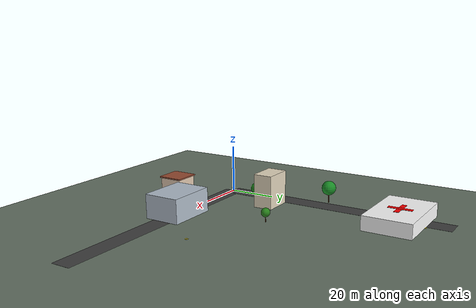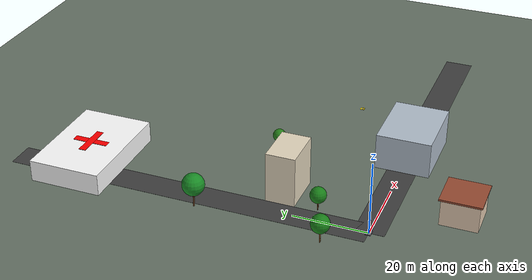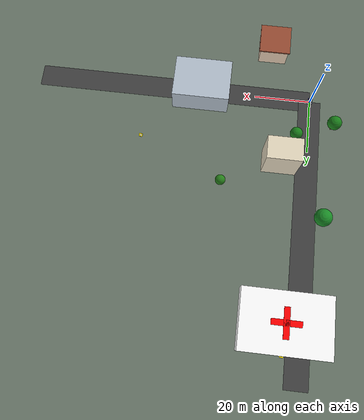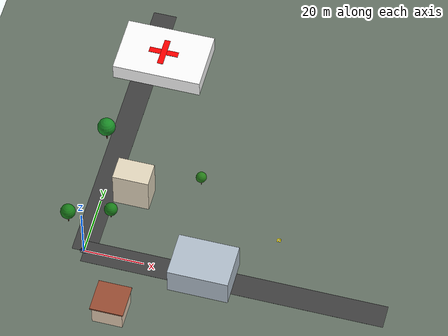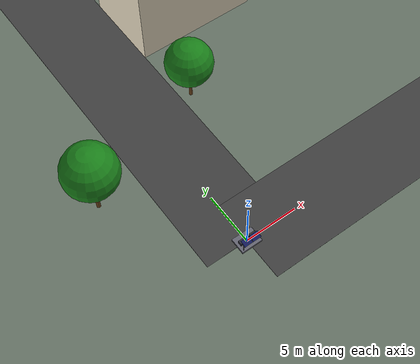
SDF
<?xml version="1.0" ?>
<sdf version="1.6">
  <world name="delivery_urban">

    <!-- Physics settings — reduce for faster simulation if needed -->
    <physics type="ode">
      <real_time_update_rate>1000</real_time_update_rate>
      <max_step_size>0.001</max_step_size>
      <real_time_factor>1</real_time_factor>
      <ode>
        <solver>
          <type>quick</type>
          <iters>150</iters>
          <sor>1.400000</sor>
        </solver>
        <constraints>
          <cfm>0.00001</cfm>
          <erp>0.2</erp>
          <contact_max_correcting_vel>2000</contact_max_correcting_vel>
          <contact_surface_layer>0.01000</contact_surface_layer>
        </constraints>
      </ode>
    </physics>

    <!-- Lighting -->
    <light name="sun" type="directional">
      <cast_shadows>true</cast_shadows>
      <pose>0 0 1000 0 -0 0</pose>
      <diffuse>0.8 0.8 0.8 1</diffuse>
      <specular>0.1 0.1 0.1 1</specular>
      <direction>-0.5 0.1 -0.9</direction>
    </light>

    <!-- Atmosphere for barometer simulation -->
    <atmosphere type="adiabatic"/>

    <!-- Scene -->
    <scene>
      <ambient>0.4 0.4 0.4 1</ambient>
      <background>0.7 0.8 0.95 1</background>
      <sky>
        <clouds>
          <speed>12</speed>
        </clouds>
      </sky>
    </scene>

    <!-- Gravity -->
    <gravity>0 0 -9.8066</gravity>
    <magnetic_field>6e-06 2.3e-05 -4.2e-05</magnetic_field>

    <!-- ================================================================
         GROUND PLANE
    ================================================================ -->
    <model name="ground_plane">
      <static>true</static>
      <link name="link">
        <collision name="collision">
          <geometry><plane><normal>0 0 1</normal><size>500 500</size></plane></geometry>
        </collision>
        <visual name="visual">
          <cast_shadows>false</cast_shadows>
          <geometry><plane><normal>0 0 1</normal><size>500 500</size></plane></geometry>
          <material>
            <ambient>0.3 0.35 0.3 1</ambient>
            <diffuse>0.4 0.45 0.4 1</diffuse>
          </material>
        </visual>
      </link>
    </model>

    <!-- ================================================================
         ROAD (simplified flat darker strip)
    ================================================================ -->
    <model name="road_north">
      <static>true</static>
      <pose>0 50 0.005 0 0 0</pose>
      <link name="link">
        <visual name="visual">
          <geometry><box><size>8 100 0.01</size></box></geometry>
          <material><ambient>0.2 0.2 0.2 1</ambient><diffuse>0.25 0.25 0.25 1</diffuse></material>
        </visual>
      </link>
    </model>

    <model name="road_east">
      <static>true</static>
      <pose>50 0 0.005 0 0 0</pose>
      <link name="link">
        <visual name="visual">
          <geometry><box><size>100 8 0.01</size></box></geometry>
          <material><ambient>0.2 0.2 0.2 1</ambient><diffuse>0.25 0.25 0.25 1</diffuse></material>
        </visual>
      </link>
    </model>

    <model name="building_a">
      <static>true</static>
      <pose>10 25 7 0 0 0</pose>
      <link name="link">
        <collision name="collision">
          <geometry><box><size>12 8 14</size></box></geometry>
        </collision>
        <visual name="visual">
          <geometry><box><size>12 8 14</size></box></geometry>
          <material>
            <ambient>0.8 0.75 0.65 1</ambient>
            <diffuse>0.9 0.85 0.75 1</diffuse>
          </material>
        </visual>
      </link>
    </model>

    <model name="building_b">
      <static>true</static>
      <pose>40 0 5 0 0 0</pose>
      <link name="link">
        <collision name="collision">
          <geometry><box><size>20 15 10</size></box></geometry>
        </collision>
        <visual name="visual">
          <geometry><box><size>20 15 10</size></box></geometry>
          <material>
            <ambient>0.6 0.65 0.7 1</ambient>
            <diffuse>0.7 0.75 0.8 1</diffuse>
          </material>
        </visual>
      </link>
    </model>

    <model name="building_c">
      <static>true</static>
      <pose>15 -20 3.5 0 0 0</pose>
      <link name="link">
        <collision name="collision">
          <geometry><box><size>10 10 7</size></box></geometry>
        </collision>
        <visual name="visual">
          <geometry><box><size>10 10 7</size></box></geometry>
          <material>
            <ambient>0.85 0.7 0.6 1</ambient>
            <diffuse>0.9 0.8 0.7 1</diffuse>
          </material>
        </visual>
        <!-- Roof -->
        <visual name="roof">
          <pose>0 0 4 0 0 0</pose>
          <geometry><box><size>11 11 0.5</size></box></geometry>
          <material><ambient>0.6 0.3 0.2 1</ambient></material>
        </visual>
      </link>
    </model>

    <model name="building_hospital">
      <static>true</static>
      <pose>5 80 3 0 0 0</pose>
      <link name="link">
        <collision name="collision">
          <geometry><box><size>30 20 6</size></box></geometry>
        </collision>
        <visual name="visual">
          <geometry><box><size>30 20 6</size></box></geometry>
          <material>
            <ambient>0.95 0.95 0.95 1</ambient>
            <diffuse>1 1 1 1</diffuse>
          </material>
        </visual>
        <!-- Red cross marker on roof -->
        <visual name="cross_h">
          <pose>0 0 3.05 0 0 0</pose>
          <geometry><box><size>10 2 0.1</size></box></geometry>
          <material><ambient>0.9 0 0 1</ambient><diffuse>1 0 0 1</diffuse></material>
        </visual>
        <visual name="cross_v">
          <pose>0 0 3.05 0 0 0</pose>
          <geometry><box><size>2 10 0.1</size></box></geometry>
          <material><ambient>0.9 0 0 1</ambient><diffuse>1 0 0 1</diffuse></material>
        </visual>
      </link>
    </model>

    <!-- ================================================================
         TREES (cylindrical trunks + spherical canopies)
    ================================================================ -->
    <model name="tree_1">
      <static>true</static>
      <pose>5 15 0 0 0 0</pose>
      <link name="link">
        <visual name="trunk">
          <pose>0 0 1.5 0 0 0</pose>
          <geometry><cylinder><radius>0.15</radius><length>3</length></cylinder></geometry>
          <material><ambient>0.4 0.25 0.1 1</ambient></material>
        </visual>
        <visual name="canopy">
          <pose>0 0 4.5 0 0 0</pose>
          <geometry><sphere><radius>2.2</radius></sphere></geometry>
          <material><ambient>0.1 0.45 0.1 1</ambient><diffuse>0.1 0.5 0.1 1</diffuse></material>
        </visual>
        <collision name="trunk_collision">
          <pose>0 0 1.5 0 0 0</pose>
          <geometry><cylinder><radius>0.15</radius><length>3</length></cylinder></geometry>
        </collision>
        <collision name="canopy_collision">
          <pose>0 0 4.5 0 0 0</pose>
          <geometry><sphere><radius>2.2</radius></sphere></geometry>
        </collision>
      </link>
    </model>

    <model name="tree_2">
      <static>true</static>
      <pose>-8 10 0 0 0 0</pose>
      <link name="link">
        <visual name="trunk">
          <pose>0 0 2 0 0 0</pose>
          <geometry><cylinder><radius>0.18</radius><length>4</length></cylinder></geometry>
          <material><ambient>0.4 0.25 0.1 1</ambient></material>
        </visual>
        <visual name="canopy">
          <pose>0 0 5.5 0 0 0</pose>
          <geometry><sphere><radius>2.5</radius></sphere></geometry>
          <material><ambient>0.1 0.5 0.1 1</ambient></material>
        </visual>
        <collision name="trunk_collision">
          <pose>0 0 2 0 0 0</pose>
          <geometry><cylinder><radius>0.18</radius><length>4</length></cylinder></geometry>
        </collision>
        <collision name="canopy_collision">
          <pose>0 0 5.5 0 0 0</pose>
          <geometry><sphere><radius>2.5</radius></sphere></geometry>
        </collision>
      </link>
    </model>

    <model name="tree_3">
      <static>true</static>
      <pose>30 35 0 0 0 0</pose>
      <link name="link">
        <visual name="trunk">
          <pose>0 0 1.5 0 0 0</pose>
          <geometry><cylinder><radius>0.12</radius><length>3</length></cylinder></geometry>
          <material><ambient>0.4 0.25 0.1 1</ambient></material>
        </visual>
        <visual name="canopy">
          <pose>0 0 4.0 0 0 0</pose>
          <geometry><sphere><radius>1.8</radius></sphere></geometry>
          <material><ambient>0.15 0.5 0.1 1</ambient></material>
        </visual>
        <collision name="trunk_collision">
          <pose>0 0 1.5 0 0 0</pose>
          <geometry><cylinder><radius>0.12</radius><length>3</length></cylinder></geometry>
        </collision>
        <collision name="canopy_collision">
          <pose>0 0 4.0 0 0 0</pose>
          <geometry><sphere><radius>1.8</radius></sphere></geometry>
        </collision>
      </link>
    </model>

    <model name="tree_4">
      <static>true</static>
      <pose>-5 45 0 0 0 0</pose>
      <link name="link">
        <visual name="trunk">
          <pose>0 0 2.5 0 0 0</pose>
          <geometry><cylinder><radius>0.2</radius><length>5</length></cylinder></geometry>
          <material><ambient>0.35 0.2 0.1 1</ambient></material>
        </visual>
        <visual name="canopy">
          <pose>0 0 6.5 0 0 0</pose>
          <geometry><sphere><radius>3.0</radius></sphere></geometry>
          <material><ambient>0.1 0.55 0.15 1</ambient></material>
        </visual>
        <collision name="trunk_collision">
          <pose>0 0 2.5 0 0 0</pose>
          <geometry><cylinder><radius>0.2</radius><length>5</length></cylinder></geometry>
        </collision>
        <collision name="canopy_collision">
          <pose>0 0 6.5 0 0 0</pose>
          <geometry><sphere><radius>3.0</radius></sphere></geometry>
        </collision>
      </link>
    </model>

    <include>
      <uri>model://charging_station</uri>
      <pose>0 0 0 0 0 0</pose>
      <name>charging_station</name>
    </include>

    <include>
      <uri>model://landing_pad</uri>
      <pose>0 0 0.01 0 0 0</pose>
      <name>home_landing_pad</name>
    </include>

    <!-- ================================================================
         DELIVERY TARGET PADS
    ================================================================ -->
    <!-- Hospital delivery pad -->
    <include>
      <uri>model://landing_pad</uri>
      <pose>5 90 0.01 0 0 0</pose>
      <name>delivery_pad_hospital</name>
    </include>

    <!-- Secondary delivery pad (pharmacy area) -->
    <include>
      <uri>model://landing_pad</uri>
      <pose>60 20 0.01 0 0 0</pose>
      <name>delivery_pad_pharmacy</name>
    </include>

    <!-- Drone is spawned in the launch file at 0 0 0.3 -->

  </world>
</sdf>

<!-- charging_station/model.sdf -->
<sdf version="1.6">
  <model name="charging_station">
    <static>true</static>

    <!-- Base platform -->
    <link name="base">
      <pose>0 0 0.1 0 0 0</pose>
      <collision name="base_col">
        <geometry><box><size>2.0 1.5 0.2</size></box></geometry>
      </collision>
      <visual name="base_vis">
        <geometry><box><size>2.0 1.5 0.2</size></box></geometry>
        <material>
          <ambient>0.3 0.3 0.35 1</ambient>
          <diffuse>0.4 0.4 0.45 1</diffuse>
        </material>
      </visual>
    </link>

    <!-- Battery bay housing -->
    <link name="battery_bay">
      <pose>0.5 0 0.35 0 0 0</pose>
      <collision name="bay_col">
        <geometry><box><size>0.8 0.4 0.3</size></box></geometry>
      </collision>
      <visual name="bay_vis">
        <geometry><box><size>0.8 0.4 0.3</size></box></geometry>
        <material>
          <ambient>0.15 0.15 0.15 1</ambient>
          <diffuse>0.2 0.2 0.2 1</diffuse>
        </material>
      </visual>
      <!-- Bay door (visual indicator - open) -->
      <visual name="bay_door">
        <pose>0.41 0 0 0 0 0</pose>
        <geometry><box><size>0.02 0.42 0.32</size></box></geometry>
        <material><ambient>0.2 0.5 0.2 1</ambient></material>
      </visual>
    </link>

    <!-- Control box -->
    <link name="control_box">
      <pose>-0.5 0 0.35 0 0 0</pose>
      <collision name="ctrl_col">
        <geometry><box><size>0.5 0.4 0.3</size></box></geometry>
      </collision>
      <visual name="ctrl_vis">
        <geometry><box><size>0.5 0.4 0.3</size></box></geometry>
        <material><ambient>0.2 0.2 0.25 1</ambient></material>
      </visual>
      <!-- Status LED (green = ready) -->
      <visual name="status_led">
        <pose>0.26 0 0.1 0 0 0</pose>
        <geometry><sphere><radius>0.03</radius></sphere></geometry>
        <material>
          <ambient>0 1 0 1</ambient>
          <diffuse>0 1 0 1</diffuse>
          <emissive>0 0.8 0 1</emissive>
        </material>
      </visual>
    </link>

    <!-- Solar panel support mast -->
    <link name="mast">
      <pose>-0.8 -0.6 0.75 0 0 0</pose>
      <collision name="mast_col">
        <geometry><cylinder><radius>0.04</radius><length>1.0</length></cylinder></geometry>
      </collision>
      <visual name="mast_vis">
        <geometry><cylinder><radius>0.04</radius><length>1.0</length></cylinder></geometry>
        <material><ambient>0.5 0.5 0.5 1</ambient></material>
      </visual>
    </link>

    <!-- Solar panel array (2 panels tilted 20° south) -->
    <link name="solar_panel_1">
      <pose>-0.5 -0.6 1.35 0.349 0 0</pose>
      <collision name="panel1_col">
        <geometry><box><size>0.8 0.6 0.03</size></box></geometry>
      </collision>
      <visual name="panel1_vis">
        <geometry><box><size>0.8 0.6 0.03</size></box></geometry>
        <material>
          <ambient>0.05 0.08 0.25 1</ambient>
          <diffuse>0.07 0.1 0.35 1</diffuse>
          <specular>0.3 0.3 0.4 1</specular>
        </material>
      </visual>
    </link>

    <link name="solar_panel_2">
      <pose>0.35 -0.6 1.35 0.349 0 0</pose>
      <collision name="panel2_col">
        <geometry><box><size>0.8 0.6 0.03</size></box></geometry>
      </collision>
      <visual name="panel2_vis">
        <geometry><box><size>0.8 0.6 0.03</size></box></geometry>
        <material>
          <ambient>0.05 0.08 0.25 1</ambient>
          <diffuse>0.07 0.1 0.35 1</diffuse>
          <specular>0.3 0.3 0.4 1</specular>
        </material>
      </visual>
    </link>

  </model>
</sdf>

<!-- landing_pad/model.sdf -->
<sdf version="1.6">
  <model name="landing_pad">
    <static>true</static>

    <link name="pad">
      <pose>0 0 0 0 0 0</pose>

      <!-- Main pad surface -->
      <collision name="pad_col">
        <geometry><box><size>1.2 1.2 0.02</size></box></geometry>
      </collision>
      <visual name="pad_vis">
        <geometry><box><size>1.2 1.2 0.02</size></box></geometry>
        <material>
          <ambient>0.9 0.8 0.0 1</ambient>
          <diffuse>1.0 0.9 0.0 1</diffuse>
        </material>
      </visual>

      <!-- ArUco marker representation (white square centre) -->
      <visual name="marker_bg">
        <pose>0 0 0.011 0 0 0</pose>
        <geometry><box><size>0.52 0.52 0.001</size></box></geometry>
        <material><ambient>1 1 1 1</ambient><diffuse>1 1 1 1</diffuse></material>
      </visual>
      <visual name="marker_block_tl">
        <pose>-0.13 0.13 0.012 0 0 0</pose>
        <geometry><box><size>0.1 0.1 0.001</size></box></geometry>
        <material><ambient>0 0 0 1</ambient><diffuse>0 0 0 1</diffuse></material>
      </visual>
      <visual name="marker_block_tr">
        <pose>0.13 0.13 0.012 0 0 0</pose>
        <geometry><box><size>0.1 0.1 0.001</size></box></geometry>
        <material><ambient>0 0 0 1</ambient><diffuse>0 0 0 1</diffuse></material>
      </visual>
      <visual name="marker_block_bl">
        <pose>-0.13 -0.13 0.012 0 0 0</pose>
        <geometry><box><size>0.1 0.1 0.001</size></box></geometry>
        <material><ambient>0 0 0 1</ambient><diffuse>0 0 0 1</diffuse></material>
      </visual>
      <visual name="marker_block_br">
        <pose>0.13 -0.13 0.012 0 0 0</pose>
        <geometry><box><size>0.1 0.1 0.001</size></box></geometry>
        <material><ambient>0 0 0 1</ambient><diffuse>0 0 0 1</diffuse></material>
      </visual>

      <!-- Quadrant direction arrows -->
      <visual name="north_arrow">
        <pose>0 0.45 0.011 0 0 0</pose>
        <geometry><box><size>0.04 0.15 0.001</size></box></geometry>
        <material><ambient>1 0.2 0.2 1</ambient><diffuse>1 0.2 0.2 1</diffuse></material>
      </visual>

    </link>
  </model>
</sdf>
